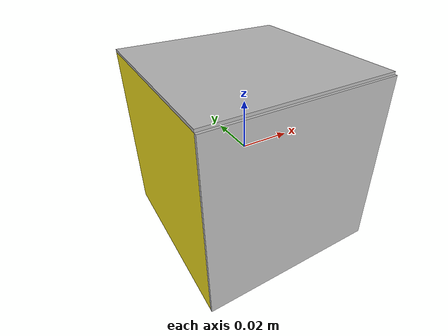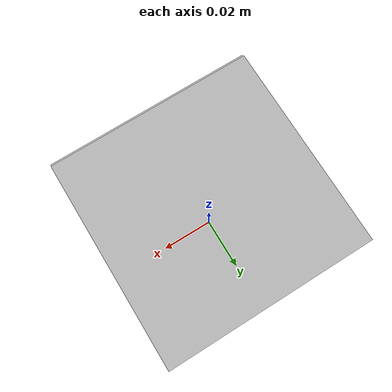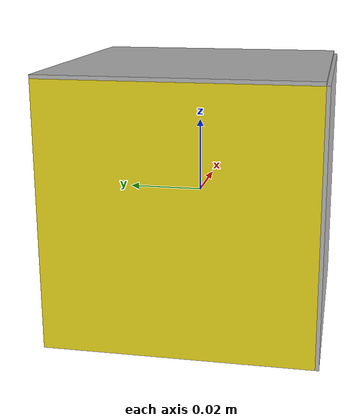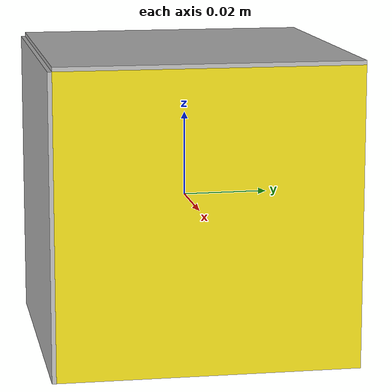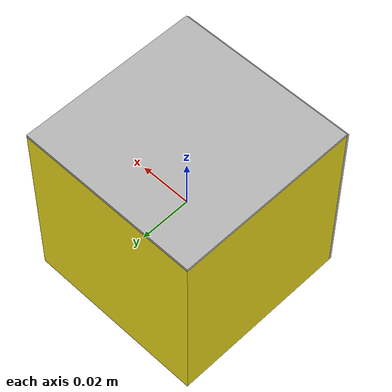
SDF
<?xml version="1.0"?>
<sdf version="1.6">
  <model name="material_cube_yellow">
    <link name="link">
      <inertial>
        <mass>0.05</mass>
        <inertia>
          <ixx>4.0e-5</ixx><ixy>0</ixy><ixz>0</ixz>
          <iyy>4.0e-5</iyy><iyz>0</iyz><izz>4.0e-5</izz>
        </inertia>
      </inertial>
      <collision name="collision">
        <geometry><box><size>0.07 0.07 0.07</size></box></geometry>
        <surface>
          <friction><ode><mu>1.0</mu><mu2>1.0</mu2></ode></friction>
          <contact>
            <ode>
              <kp>1e6</kp>
              <kd>1.0</kd>
              <min_depth>0.001</min_depth>
              <max_vel>0.01</max_vel>
            </ode>
          </contact>
        </surface>
      </collision>
      <visual name="body_visual">
        <geometry><box><size>0.07 0.07 0.07</size></box></geometry>
        <material>
          <ambient>0.92 0.85 0.10 1</ambient>
          <diffuse>0.92 0.85 0.10 1</diffuse>
        </material>
      </visual>
      <visual name="aruco_marker_front">
        <pose>0 -0.0355 0 0 0 0</pose>
        <geometry>
          <box><size>0.07 0.001 0.07</size></box>
        </geometry>
        <material>
          <script>
            <uri>model://material_cube_yellow/materials/scripts</uri>
            <uri>model://material_cube_yellow/materials/textures</uri>
            <name>MaterialCubeYellow/Marker</name>
          </script>
        </material>
      </visual>
      <visual name="aruco_marker_top">
        <pose>0 0 0.0355 0 0 0</pose>
        <geometry>
          <box><size>0.07 0.07 0.001</size></box>
        </geometry>
        <material>
          <script>
            <uri>model://material_cube_yellow/materials/scripts</uri>
            <uri>model://material_cube_yellow/materials/textures</uri>
            <name>MaterialCubeYellow/MarkerTop</name>
          </script>
        </material>
      </visual>
    </link>
  </model>
</sdf>
